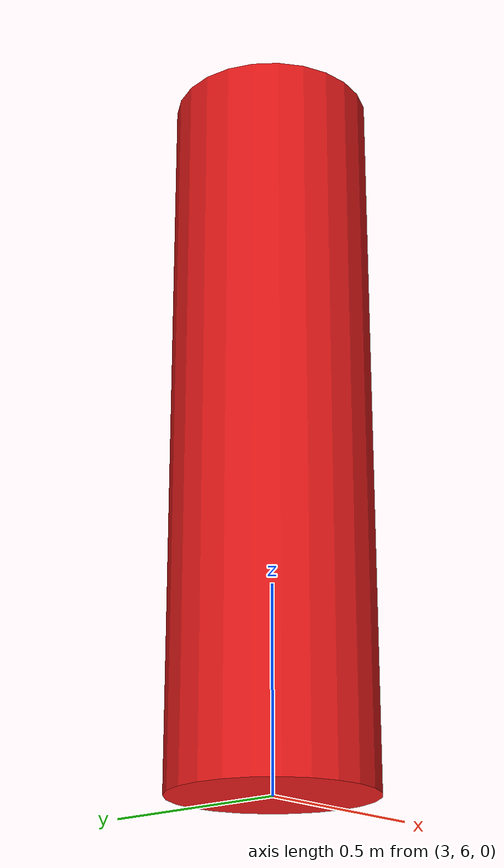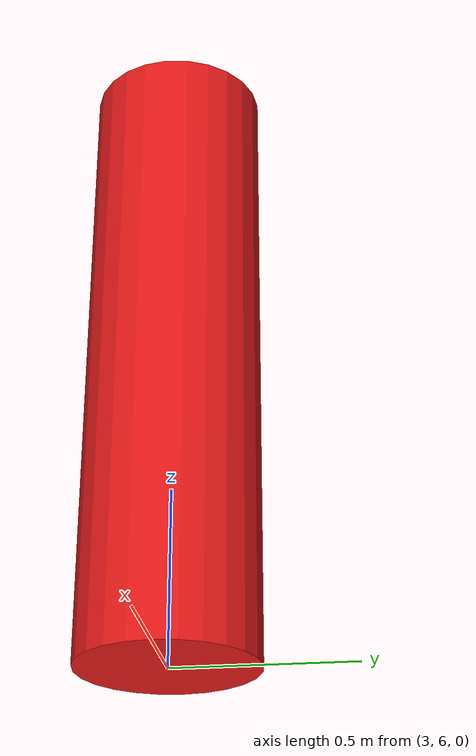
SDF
<?xml version="1.0" ?>
<sdf version="1.6">
  <model name="s5_human">
    <static>false</static>
    <pose>3.0 6.0 0.9 0 0 0</pose>
    <link name="link">
      <inertial>
        <mass>80.0</mass>
        <inertia>
          <ixx>10.0</ixx> <ixy>0.0</ixy> <ixz>0.0</ixz>
          <iyy>10.0</iyy> <iyz>0.0</iyz> <izz>10.0</izz>
        </inertia>
      </inertial>
      <collision name="collision">
        <geometry>
          <cylinder>
            <radius>0.25</radius>
            <length>1.8</length>
          </cylinder>
        </geometry>
      </collision>
      <visual name="visual">
        <geometry>
          <cylinder>
            <radius>0.25</radius>
            <length>1.8</length>
          </cylinder>
        </geometry>
        <material>
          <ambient>0.9 0.1 0.1 1.0</ambient>
          <diffuse>0.9 0.1 0.1 1.0</diffuse>
        </material>
      </visual>
    </link>
    <plugin filename="ignition-gazebo-velocity-control-system" name="ignition::gazebo::systems::VelocityControl">
      <topic>/model/s5_human/cmd_vel</topic>
    </plugin>
  </model>
</sdf>
